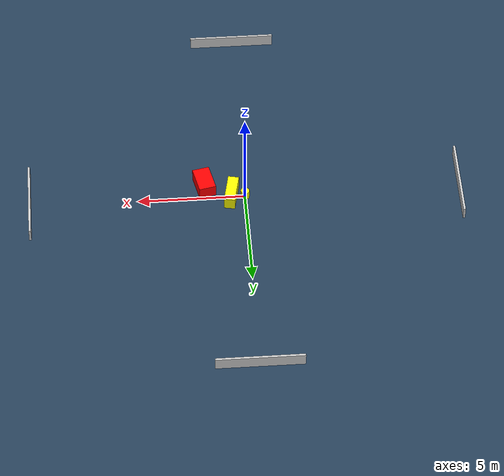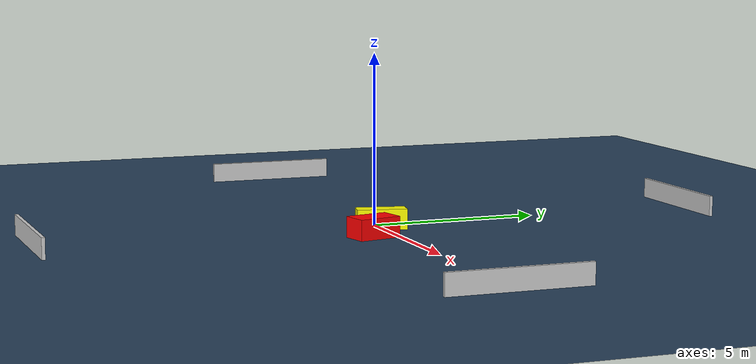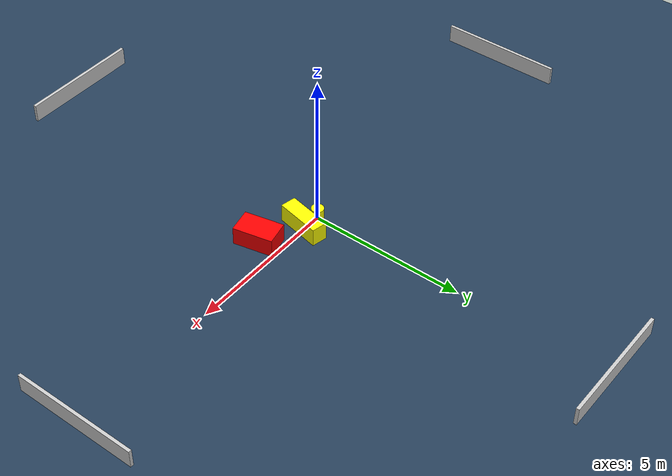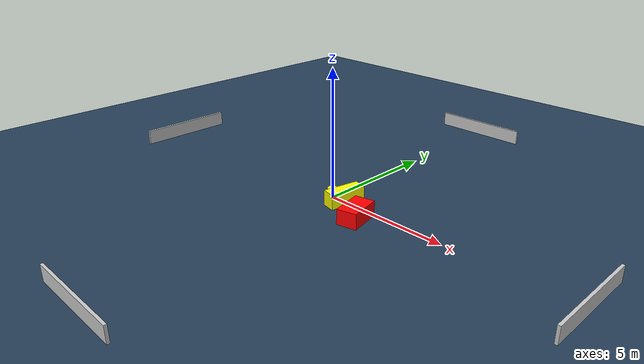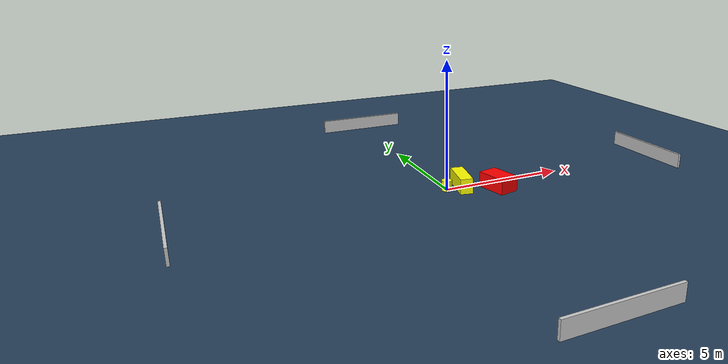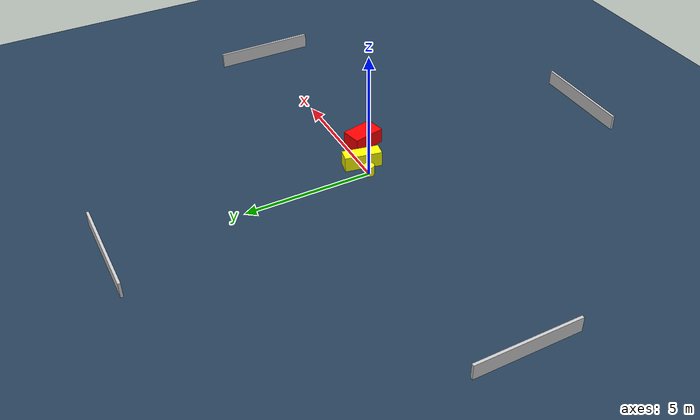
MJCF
<?xml version="1.0" ?>
<mujoco model="generated_environment">
  <option timestep="0.01" integrator="RK4" cone="elliptic"/>
  <default>
    <geom density="1"/>
  </default>
  <asset>
    <texture builtin="gradient" height="3072" name="skybox" rgb1="0.3 0.5 0.7" rgb2="0 0 0" type="skybox" width="512"/>
    <texture builtin="checker" height="300" name="groundplane" rgb1="0.2 0.3 0.4" rgb2="0.1 0.2 0.3" type="2d" width="300"/>
    <material name="groundplane" reflectance="0.2" texrepeat="5 5" texture="groundplane"/>
  </asset>
  <worldbody>
    <light dir="0 0 -1" directional="true" pos="0 0 1.5"/>
    <geom condim="3" friction="0.5 0.005 0.001" material="groundplane" name="floor" pos="0 0 0" size="0 0 0.05" type="plane"/>
    <body name="walls">
      <geom name="wall_1" condim="4" pos="-10.0 0.0 0.3" rgba="0.800000011920929 0.800000011920929 0.800000011920929 1.0" size="0.05 2.0 0.3" type="box"/>
      <geom name="wall_2" condim="4" pos="10.0 0.0 0.3" rgba="0.800000011920929 0.800000011920929 0.800000011920929 1.0" size="0.05 2.0 0.3" type="box"/>
      <geom name="wall_3" condim="4" pos="0.0 -10.0 0.3" rgba="0.800000011920929 0.800000011920929 0.800000011920929 1.0" size="2.0 0.05 0.3" type="box"/>
      <geom name="wall_4" condim="4" pos="0.0 10.0 0.3" rgba="0.800000011920929 0.800000011920929 0.800000011920929 1.0" size="2.0 0.05 0.3" type="box"/>
    </body>
    <body name="robot">
      <joint name="joint_x" type="slide" pos="0 0 0" axis="1 0 0"/>
      <joint name="joint_y" type="slide" pos="0 0 0" axis="0 1 0"/>
      <geom name="robot" type="cylinder" pos="0.0 0.0 0.2" size="0.2 0.2 0.0" mass="5.0" friction="1.0 0.005 0.0001" condim="4" rgba="1.0 1.0 0.0 1.0"/>
    </body>
    <body name="obstacle_1_movable">
      <geom name="obstacle_1_movable" condim="4" pos="0.6296134932128049 -0.024249999262306927 0.3" euler="0 0 258.73542690662407" friction="0.0 0.005 0.001" rgba="1.0 1.0 0.0 1.0" size="0.72205995156605 0.25247285840652456 0.3" type="box" mass="0.1"/>
      <joint type="free"/>
    </body>
    <body name="obstacle_2_static">
      <geom name="obstacle_2_static" condim="4" pos="1.8621559560581433 -0.7262107918820022 0.3" euler="0 0 102.26412815144998" friction="0.0 0.005 0.001" rgba="1.0 0.0 0.0 1.0" size="0.6346798272504273 0.3947177429735098 0.3" type="box"/>
    </body>
  </worldbody>
  <actuator>
    <motor name="actuator_x" joint="joint_x" gear="1" ctrlrange="-1 1"/>
    <motor name="actuator_y" joint="joint_y" gear="1" ctrlrange="-1 1"/>
  </actuator>
</mujoco>
